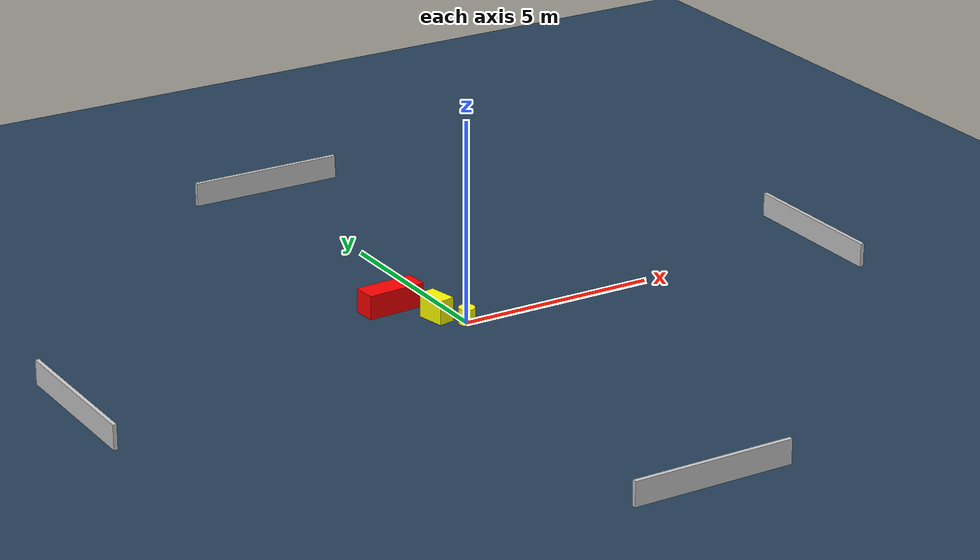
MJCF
<?xml version="1.0" ?>
<mujoco model="generated_environment">
  <option timestep="0.01" integrator="RK4" cone="elliptic"/>
  <default>
    <geom density="1"/>
  </default>
  <asset>
    <texture builtin="gradient" height="3072" name="skybox" rgb1="0.3 0.5 0.7" rgb2="0 0 0" type="skybox" width="512"/>
    <texture builtin="checker" height="300" name="groundplane" rgb1="0.2 0.3 0.4" rgb2="0.1 0.2 0.3" type="2d" width="300"/>
    <material name="groundplane" reflectance="0.2" texrepeat="5 5" texture="groundplane"/>
  </asset>
  <worldbody>
    <light dir="0 0 -1" directional="true" pos="0 0 1.5"/>
    <geom condim="3" friction="0.5 0.005 0.001" material="groundplane" name="floor" pos="0 0 0" size="0 0 0.05" type="plane"/>
    <body name="walls">
      <geom name="wall_1" condim="4" pos="-10.0 0.0 0.3" rgba="0.800000011920929 0.800000011920929 0.800000011920929 1.0" size="0.05 2.0 0.3" type="box"/>
      <geom name="wall_2" condim="4" pos="10.0 0.0 0.3" rgba="0.800000011920929 0.800000011920929 0.800000011920929 1.0" size="0.05 2.0 0.3" type="box"/>
      <geom name="wall_3" condim="4" pos="0.0 -10.0 0.3" rgba="0.800000011920929 0.800000011920929 0.800000011920929 1.0" size="2.0 0.05 0.3" type="box"/>
      <geom name="wall_4" condim="4" pos="0.0 10.0 0.3" rgba="0.800000011920929 0.800000011920929 0.800000011920929 1.0" size="2.0 0.05 0.3" type="box"/>
    </body>
    <body name="robot">
      <joint name="joint_x" type="slide" pos="0 0 0" axis="1 0 0"/>
      <joint name="joint_y" type="slide" pos="0 0 0" axis="0 1 0"/>
      <geom name="robot" type="cylinder" pos="0.0 0.0 0.2" size="0.2 0.2 0.0" mass="5.0" friction="1.0 0.005 0.0001" condim="4" rgba="1.0 1.0 0.0 1.0"/>
    </body>
    <body name="obstacle_1_movable">
      <geom name="obstacle_1_movable" condim="4" pos="-0.4759357725512538 0.5803430017489906 0.3" euler="0 0 101.40828008952964" friction="0.0 0.005 0.001" rgba="1.0 1.0 0.0 1.0" size="0.3601161138962051 0.20223791411863573 0.3" type="box" mass="0.1"/>
      <joint type="free"/>
    </body>
    <body name="obstacle_2_static">
      <geom name="obstacle_2_static" condim="4" pos="-1.1194016517048897 1.635354403340068 0.3" euler="0 0 183.2182571508967" friction="0.0 0.005 0.001" rgba="1.0 0.0 0.0 1.0" size="0.7403637227381978 0.2949081469735795 0.3" type="box"/>
    </body>
  </worldbody>
  <actuator>
    <motor name="actuator_x" joint="joint_x" gear="1" ctrlrange="-1 1"/>
    <motor name="actuator_y" joint="joint_y" gear="1" ctrlrange="-1 1"/>
  </actuator>
</mujoco>
